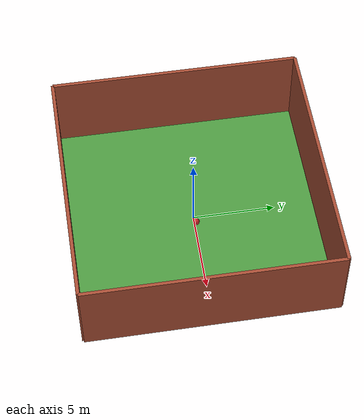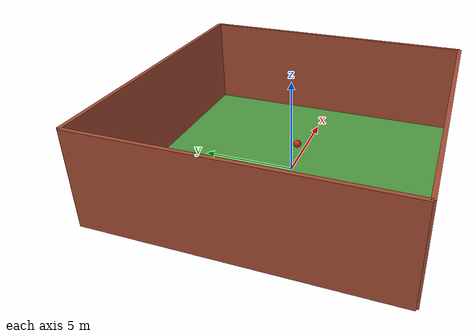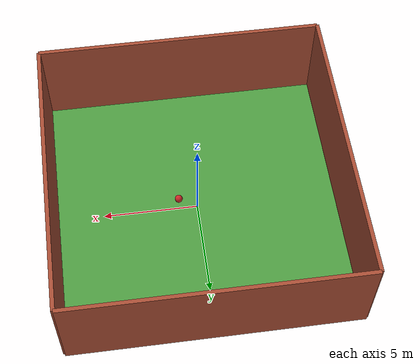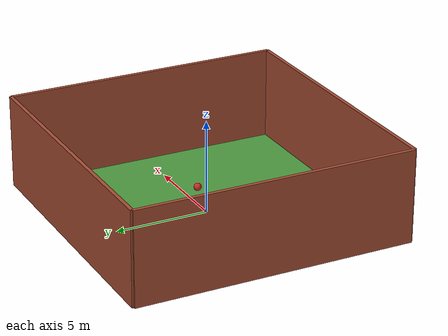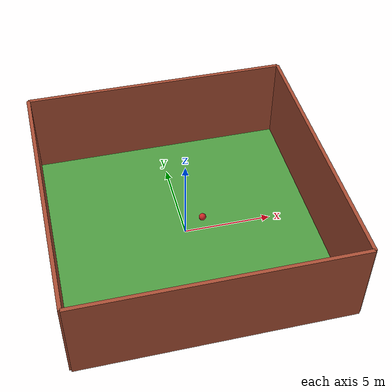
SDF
<?xml version="1.0" ?>
<!-- |    This document was autogenerated by xacro from imav_indoor.world.xacro        | -->
<!-- |    EDITING THIS FILE BY HAND IS NOT RECOMMENDED                                 | -->
<sdf version="1.6">
  <world name="imav_world">
    <light name="sun" type="directional">
      <cast_shadows>1</cast_shadows>
      <pose>0 10 0 0 0 -1.57079632679</pose>
      <diffuse>0.8 0.8 0.8 1</diffuse>
      <specular>0.2 0.2 0.2 1</specular>
      <attenuation>
        <range>1000</range>
        <constant>0.9</constant>
        <linear>0.01</linear>
        <quadratic>0.001</quadratic>
      </attenuation>
      <direction>-0.5 0.1 -0.9</direction>
    </light>
    <spherical_coordinates>
			<surface_model>EARTH_WGS84</surface_model>
			<latitude_deg>51.9906340</latitude_deg>
			<longitude_deg>4.3767889</longitude_deg>
			<elevation>45.110</elevation>
			<heading_deg>180</heading_deg><!-- Temporary fix for issue https://bitbucket.org/osrf/gazebo/issues/2022/default-sphericalcoordinates-frame-should -->
		</spherical_coordinates>
		<physics type="ode">
			<max_step_size>0.001</max_step_size>
			<real_time_update_rate>0</real_time_update_rate><!-- Handled by Paparazzi! -->
		</physics>
    <gravity>0 0 -9.8</gravity>
    <gui fullscreen="0">
      <camera name="user_camera">
        <pose>1.49016 -3.72367 3.62379 -2.88294e-17 0.273797 1.4042</pose>
        <view_controller>orbit</view_controller>
      </camera>
    </gui>
    <scene>
      <ambient>0.4 0.4 0.4 1</ambient>
      <background>0.7 0.7 0.7 1</background>
      <sky>
        <clouds>
          <speed>12</speed>
        </clouds>
      </sky>
      <shadows>0</shadows>
      <grid>0</grid>
    </scene>
    <model name="floor">
      <static>1</static>
      <pose>0.0 0.0 0 0 0 0</pose>
      <link name="link">
        <collision name="collision">
          <geometry>
            <plane>
              <normal>0 0 1</normal>
              <size>10 10</size>
            </plane>
          </geometry>
          <surface>
            <friction>
              <ode>
                <mu>100</mu>
                <mu2>50</mu2>
              </ode>
            </friction>
            <bounce/>
            <contact>
              <ode/>
            </contact>
          </surface>
          <max_contacts>10</max_contacts>
        </collision>
        <visual name="visual">
          <cast_shadows>0</cast_shadows>
          <geometry>
            <plane>
              <normal>0 0 1</normal>
              <size>15 15</size>
            </plane>
          </geometry>
          <material>
            <script>
              <name>Kitchen/Grass</name>
            </script>
          </material>
        </visual>
        <velocity_decay>
          <linear>0</linear>
          <angular>0</angular>
        </velocity_decay>
        <self_collide>0</self_collide>
        <kinematic>0</kinematic>
        <gravity>1</gravity>
      </link>
    </model>
    <model name="wall1">
      <static>true</static>
      <pose>0 7.5 2.5 0 0 0</pose>
      <link name="wall_link">
        <inertial>
          <mass>10000</mass>
        </inertial>
        <collision name="wall_brand_collision">
          <geometry>
            <box>
              <size>15 0.2 5.0</size>
            </box>
          </geometry>
          <surface>
            <contact>
              <collide_bitmask>0x02</collide_bitmask>
            </contact>
          </surface>
        </collision>
        <visual name="wall_brand_visual">
          <geometry>
            <box>
              <size>15 0.2 5.0</size>
            </box>
          </geometry>
          <material>
            <script>
              <name>Gazebo/Bricks</name>
            </script>
          </material>
        </visual>
      </link>
    </model>
    <model name="wall2">
      <static>true</static>
      <pose>-7.5 0 2.5 0 0 -1.5708</pose>
      <link name="wall_link">
        <inertial>
          <mass>10000</mass>
        </inertial>
        <collision name="wall_imav_collision">
          <geometry>
            <box>
              <size>15 0.2 5.0</size>
            </box>
          </geometry>
          <surface>
            <contact>
              <collide_bitmask>0x02</collide_bitmask>
            </contact>
          </surface>
        </collision>
        <visual name="wall_imav_visual">
          <geometry>
            <box>
              <size>15 0.2 5.0</size>
            </box>
          </geometry>
          <material>
            <script>
              <name>Gazebo/Bricks</name>
            </script>
          </material>
        </visual>
      </link>
    </model>
    <model name="wall3">
      <static>true</static>
      <pose>7.5 0 2.5 0 0 -1.5708</pose>
      <link name="wall_link">
        <inertial>
          <mass>10000</mass>
        </inertial>
        <collision name="wall_imav_collision">
          <geometry>
            <box>
              <size>15 0.2 5.0</size>
            </box>
          </geometry>
          <surface>
            <contact>
              <collide_bitmask>0x02</collide_bitmask>
            </contact>
          </surface>
        </collision>
        <visual name="wall_imav_visual">
          <geometry>
            <box>
              <size>15 0.2 5.0</size>
            </box>
          </geometry>
          <material>
            <script>
              <name>Gazebo/Bricks</name>
            </script>
          </material>
        </visual>
      </link>
    </model>
    <model name="wall4">
      <static>true</static>
      <pose>0 -7.5 2.5 0 0 0</pose>
      <link name="wall_link">
        <inertial>
          <mass>10000</mass>
        </inertial>
        <collision name="wall_imav_collision">
          <geometry>
            <box>
              <size>15 0.2 5.0</size>
            </box>
          </geometry>
          <surface>
            <contact>
              <collide_bitmask>0x02</collide_bitmask>
            </contact>
          </surface>
        </collision>
        <visual name="wall_imav_visual">
          <geometry>
            <box>
              <size>15 0.2 5.0</size>
            </box>
          </geometry>
          <material>
            <script>
              <name>Gazebo/Bricks</name>
            </script>
          </material>
        </visual>
      </link>
    </model>
    <model name="apple_model">
      <pose>1 0 1 0 0 0</pose>
      <link name="link">
        <inertial>
          <mass>0.1</mass>
        </inertial>
        <gravity>0</gravity>

        <collision name="apple_collision">
          <geometry>
            <sphere>
              <radius>0.5</radius>
            </sphere>
          </geometry>
        </collision>
        <visual name="visual">
          <geometry>
            <sphere>
              <radius>0.2</radius>
            </sphere>
          </geometry>
          <material>
          	<script>
              <name>Gazebo/RedGlow</name>
            </script>
      	  </material>
        </visual>
      </link>
    </model>
  </world>
</sdf>
